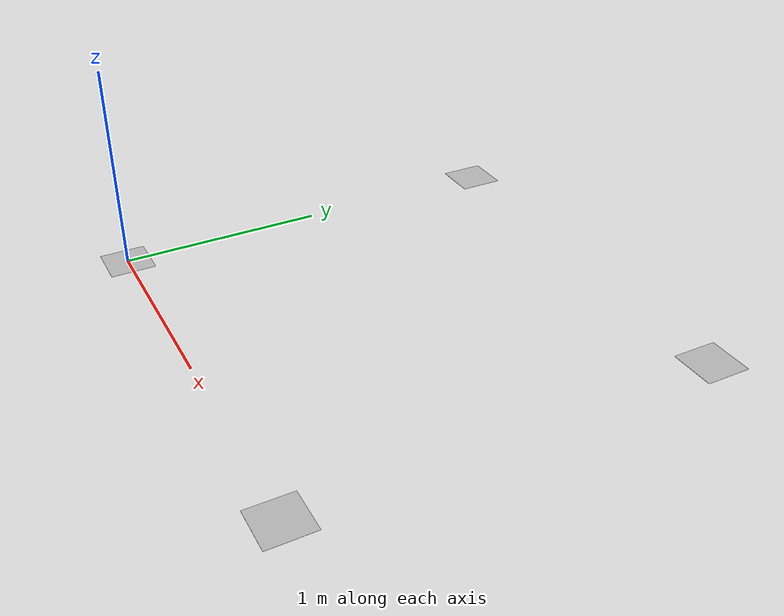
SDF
<sdf version="1.5">
 <world name="default">
  <include><uri>model://sun</uri></include>
  <include><uri>model://sky_aruco</uri></include>
  <scene>
   <ambient>0.8 0.8 0.8 1</ambient>
   <background>0.8 0.9 1 1</background>
   <shadows>false</shadows>
   <grid>false</grid>
   <origin_visual>false</origin_visual>
  </scene>
  <physics name="default_physics" default="0" type="ode">
   <gravity>0 0 -9.8066</gravity>
   <ode>
    <solver>
     <type>quick</type>
     <iters>10</iters>
     <sor>1.3</sor>
     <use_dynamic_moi_rescaling>0</use_dynamic_moi_rescaling>
    </solver>
    <constraints>
     <cfm>0</cfm>
     <erp>0.2</erp>
     <contact_max_correcting_vel>100</contact_max_correcting_vel>
     <contact_surface_layer>0.001</contact_surface_layer>
    </constraints>
   </ode>
   <max_step_size>0.004</max_step_size>
   <real_time_factor>1</real_time_factor>
   <real_time_update_rate>250</real_time_update_rate>
   <magnetic_field>6.0e-6 2.3e-5 -4.2e-5</magnetic_field>
  </physics>
 </world>
</sdf>

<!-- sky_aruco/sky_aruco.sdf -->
<sdf version="1.5">
    <model name="aruco_2_99">
        <static>true</static>
        <link name="aruco_2_99_link">

<visual name="visual_marker_2_156">
    <pose>0.0 0.0 0.0 0.0 0.0 1.57079632679</pose>
    <cast_shadows>false</cast_shadows>
    <geometry>
        <box>
            <size>0.22 0.22 1e-3</size>
        </box>
    </geometry>
    <material>
        <script>
            <uri>model://agri_aruco/materials/scripts</uri>
            <uri>model://agri_aruco/materials/textures</uri>
            <name>aruco/marker_2_156</name>
        </script>
    </material>
</visual>

<visual name="visual_marker_2_157">
    <pose>2.0 0.0 0.0 0.0 0.0 1.57079632679</pose>
    <cast_shadows>false</cast_shadows>
    <geometry>
        <box>
            <size>0.22 0.22 1e-3</size>
        </box>
    </geometry>
    <material>
        <script>
            <uri>model://agri_aruco/materials/scripts</uri>
            <uri>model://agri_aruco/materials/textures</uri>
            <name>aruco/marker_2_157</name>
        </script>
    </material>
</visual>

<visual name="visual_marker_2_158">
    <pose>0.0 2.0 0.0 0.0 0.0 1.57079632679</pose>
    <cast_shadows>false</cast_shadows>
    <geometry>
        <box>
            <size>0.22 0.22 1e-3</size>
        </box>
    </geometry>
    <material>
        <script>
            <uri>model://agri_aruco/materials/scripts</uri>
            <uri>model://agri_aruco/materials/textures</uri>
            <name>aruco/marker_2_158</name>
        </script>
    </material>
</visual>

<visual name="visual_marker_2_159">
    <pose>2.0 2.0 0.0 0.0 0.0 1.57079632679</pose>
    <cast_shadows>false</cast_shadows>
    <geometry>
        <box>
            <size>0.22 0.22 1e-3</size>
        </box>
    </geometry>
    <material>
        <script>
            <uri>model://agri_aruco/materials/scripts</uri>
            <uri>model://agri_aruco/materials/textures</uri>
            <name>aruco/marker_2_159</name>
        </script>
    </material>
</visual>

        </link>
    </model>
</sdf>
